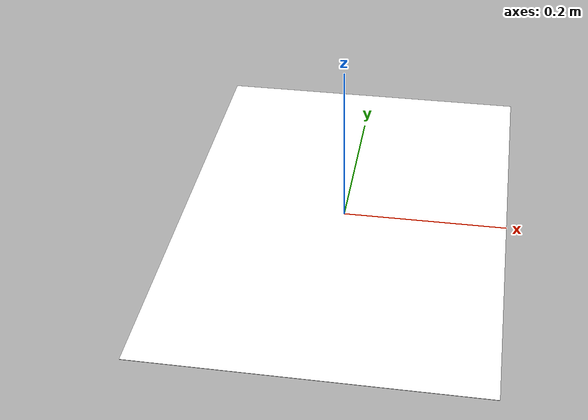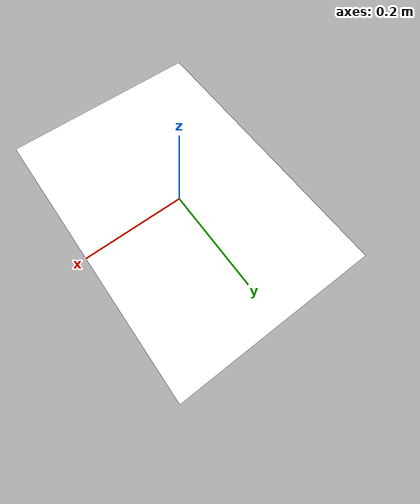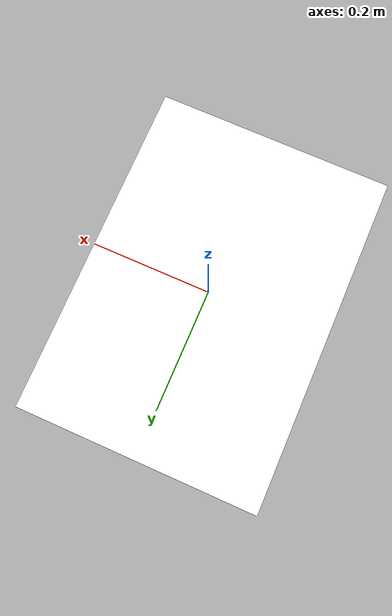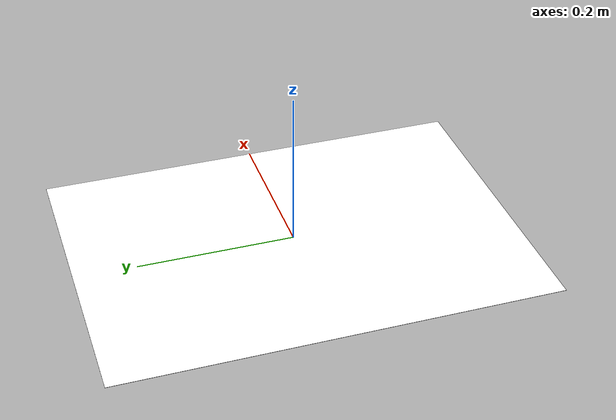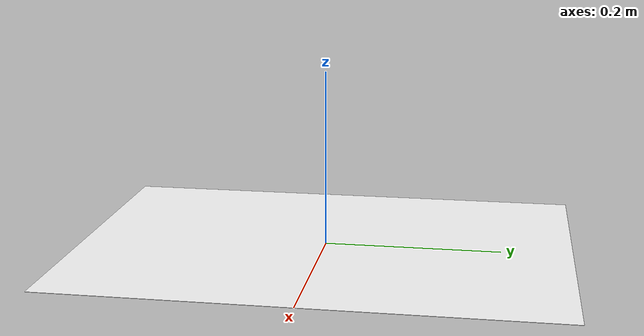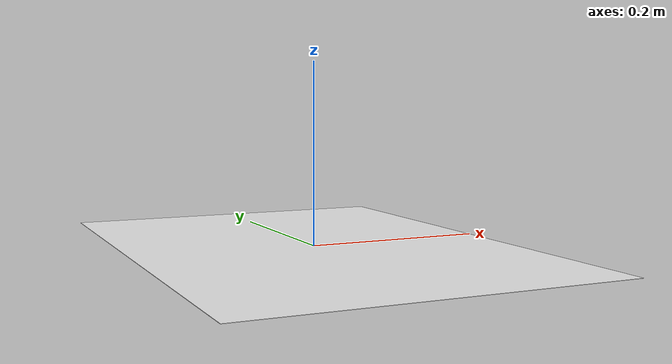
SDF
<?xml version="1.0"?>
<sdf version="1.9">
  <model name="charuco_default">
    <static>true</static>
    <link name="charuco_link">
      <visual name="charuco_visual">
        <geometry>
          <plane>
            <normal>0 0 1</normal>
            <size>0.4 0.56</size>
          </plane>
        </geometry>
        <material>
          <diffuse>1 1 1 1</diffuse>
          <specular>0.4 0.4 0.4 1</specular>
          <pbr>
            <metal>
              <albedo_map>materials/textures/pattern.png</albedo_map>
            </metal>
          </pbr>
        </material>
      </visual>
    </link>
  </model>
</sdf>
